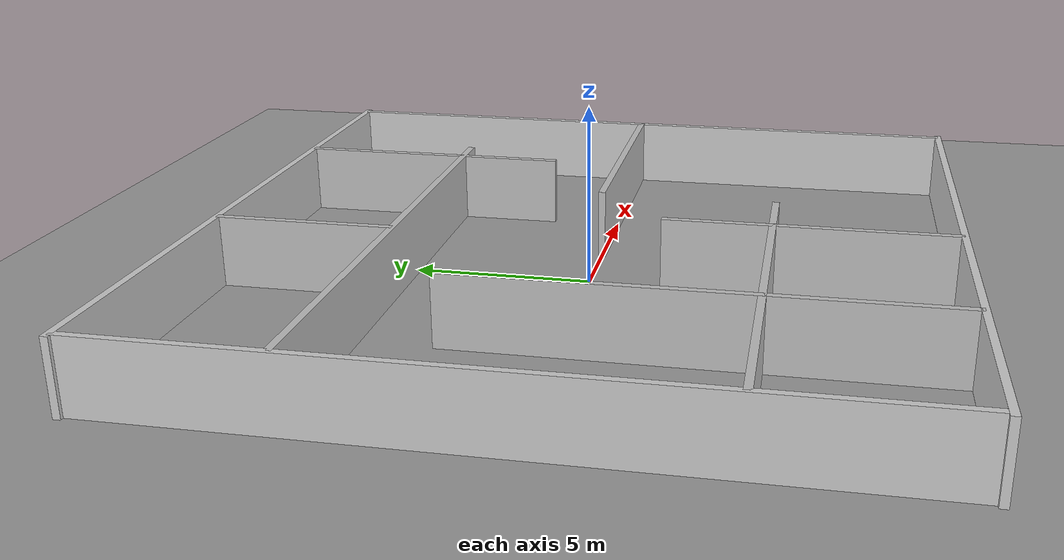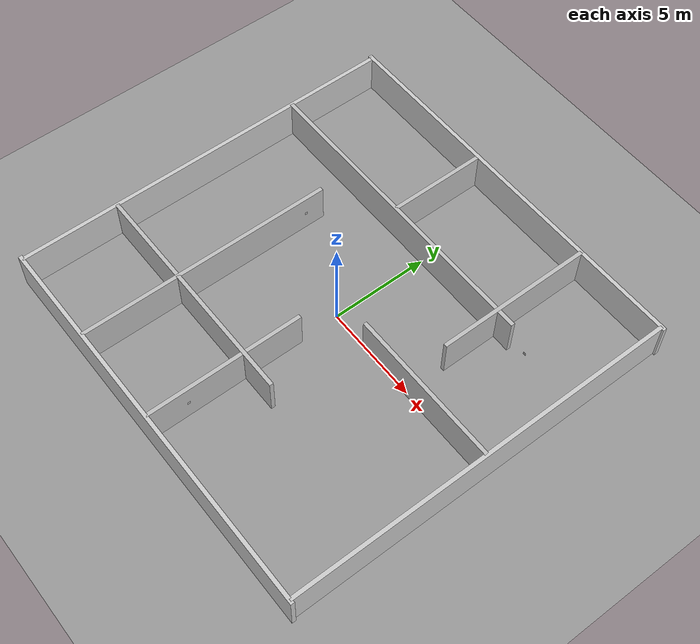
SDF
<?xml version="1.0" ?>
<sdf version="1.9">
  <world name="maze">

    <!-- ── Physics ────────────────────────────────────────────────────────── -->
    <physics name="1ms" type="ignored">
      <max_step_size>0.001</max_step_size>
      <real_time_factor>1.0</real_time_factor>
    </physics>

    <!-- ── Plugins ───────────────────────────────────────────────────────── -->
    <plugin filename="gz-sim-physics-system"
            name="gz::sim::systems::Physics"/>
    <plugin filename="gz-sim-user-commands-system"
            name="gz::sim::systems::UserCommands"/>
    <plugin filename="gz-sim-scene-broadcaster-system"
            name="gz::sim::systems::SceneBroadcaster"/>
    <plugin filename="gz-sim-sensors-system"
            name="gz::sim::systems::Sensors">
      <render_engine>ogre2</render_engine>
    </plugin>
    <plugin filename="gz-sim-imu-system"
            name="gz::sim::systems::Imu"/>
    <plugin filename="gz-sim-air-pressure-system"
            name="gz::sim::systems::AirPressure"/>
    <plugin filename="gz-sim-magnetometer-system"
            name="gz::sim::systems::Magnetometer"/>

    <!-- ── Lighting ──────────────────────────────────────────────────────── -->
    <light type="directional" name="sun">
      <cast_shadows>true</cast_shadows>
      <pose>0 0 100 0 0 0</pose>
      <diffuse>0.9 0.9 0.9 1</diffuse>
      <specular>0.1 0.1 0.1 1</specular>
      <direction>-0.5 0.1 -0.9</direction>
    </light>

    <!-- ── Ground plane ──────────────────────────────────────────────────── -->
    <model name="ground_plane">
      <static>true</static>
      <link name="link">
        <collision name="collision">
          <geometry><plane><normal>0 0 1</normal><size>100 100</size></plane></geometry>
        </collision>
        <visual name="visual">
          <geometry><plane><normal>0 0 1</normal><size>100 100</size></plane></geometry>
          <material>
            <ambient>0.6 0.6 0.6 1</ambient>
            <diffuse>0.6 0.6 0.6 1</diffuse>
          </material>
        </visual>
      </link>
    </model>

    <!--  MAZE WALLS                                                        -->
    <!--  Origin at world center. Wall thickness 0.2m, height 2.0m.        -->
    <!--  Corridor width ~2.0m.                                             -->

    <!-- Outer perimeter: 20m × 20m box, walls along edges -->

    <!-- North wall -->
    <model name="wall_N">
      <static>true</static>
      <pose>0 10 1 0 0 0</pose>
      <link name="link">
        <collision name="c"><geometry><box><size>20.4 0.2 2.0</size></box></geometry></collision>
        <visual name="v">
          <geometry><box><size>20.4 0.2 2.0</size></box></geometry>
          <material><ambient>0.8 0.8 0.8 1</ambient></material>
        </visual>
      </link>
    </model>

    <!-- South wall -->
    <model name="wall_S">
      <static>true</static>
      <pose>0 -10 1 0 0 0</pose>
      <link name="link">
        <collision name="c"><geometry><box><size>20.4 0.2 2.0</size></box></geometry></collision>
        <visual name="v">
          <geometry><box><size>20.4 0.2 2.0</size></box></geometry>
          <material><ambient>0.8 0.8 0.8 1</ambient></material>
        </visual>
      </link>
    </model>

    <!-- East wall -->
    <model name="wall_E">
      <static>true</static>
      <pose>10 0 1 0 0 0</pose>
      <link name="link">
        <collision name="c"><geometry><box><size>0.2 20.0 2.0</size></box></geometry></collision>
        <visual name="v">
          <geometry><box><size>0.2 20.0 2.0</size></box></geometry>
          <material><ambient>0.8 0.8 0.8 1</ambient></material>
        </visual>
      </link>
    </model>

    <!-- West wall -->
    <model name="wall_W">
      <static>true</static>
      <pose>-10 0 1 0 0 0</pose>
      <link name="link">
        <collision name="c"><geometry><box><size>0.2 20.0 2.0</size></box></geometry></collision>
        <visual name="v">
          <geometry><box><size>0.2 20.0 2.0</size></box></geometry>
          <material><ambient>0.8 0.8 0.8 1</ambient></material>
        </visual>
      </link>
    </model>

    <!-- ── Interior dividers (creating maze corridors) ───────────────────── -->

    <!-- Horizontal divider at y=5 from x=-10 to x=6 (gap 6..10) -->
    <model name="wall_h1">
      <static>true</static>
      <pose>-2 5 1 0 0 0</pose>
      <link name="link">
        <collision name="c"><geometry><box><size>16.0 0.2 2.0</size></box></geometry></collision>
        <visual name="v">
          <geometry><box><size>16.0 0.2 2.0</size></box></geometry>
          <material><ambient>0.75 0.75 0.75 1</ambient></material>
        </visual>
      </link>
    </model>

    <!-- Horizontal divider at y=0 from x=2 to x=10 -->
    <model name="wall_h2">
      <static>true</static>
      <pose>6 0 1 0 0 0</pose>
      <link name="link">
        <collision name="c"><geometry><box><size>8.0 0.2 2.0</size></box></geometry></collision>
        <visual name="v">
          <geometry><box><size>8.0 0.2 2.0</size></box></geometry>
          <material><ambient>0.75 0.75 0.75 1</ambient></material>
        </visual>
      </link>
    </model>

    <!-- Horizontal divider at y=-5 from x=-10 to x=2 -->
    <model name="wall_h3">
      <static>true</static>
      <pose>-4 -5 1 0 0 0</pose>
      <link name="link">
        <collision name="c"><geometry><box><size>12.0 0.2 2.0</size></box></geometry></collision>
        <visual name="v">
          <geometry><box><size>12.0 0.2 2.0</size></box></geometry>
          <material><ambient>0.75 0.75 0.75 1</ambient></material>
        </visual>
      </link>
    </model>

    <!-- Vertical divider at x=-5 from y=-10 to y=3 -->
    <model name="wall_v1">
      <static>true</static>
      <pose>-5 -3.5 1 0 0 0</pose>
      <link name="link">
        <collision name="c"><geometry><box><size>0.2 13.0 2.0</size></box></geometry></collision>
        <visual name="v">
          <geometry><box><size>0.2 13.0 2.0</size></box></geometry>
          <material><ambient>0.75 0.75 0.75 1</ambient></material>
        </visual>
      </link>
    </model>

    <!-- Vertical divider at x=0 from y=-10 to y=-2 -->
    <model name="wall_v2">
      <static>true</static>
      <pose>0 -6 1 0 0 0</pose>
      <link name="link">
        <collision name="c"><geometry><box><size>0.2 8.0 2.0</size></box></geometry></collision>
        <visual name="v">
          <geometry><box><size>0.2 8.0 2.0</size></box></geometry>
          <material><ambient>0.75 0.75 0.75 1</ambient></material>
        </visual>
      </link>
    </model>

    <!-- Vertical divider at x=5 from y=2 to y=10 -->
    <model name="wall_v3">
      <static>true</static>
      <pose>5 6 1 0 0 0</pose>
      <link name="link">
        <collision name="c"><geometry><box><size>0.2 8.0 2.0</size></box></geometry></collision>
        <visual name="v">
          <geometry><box><size>0.2 8.0 2.0</size></box></geometry>
          <material><ambient>0.75 0.75 0.75 1</ambient></material>
        </visual>
      </link>
    </model>

    <!-- Vertical divider at x=-2 from y=5 to y=10 -->
    <model name="wall_v4">
      <static>true</static>
      <pose>-2 7.5 1 0 0 0</pose>
      <link name="link">
        <collision name="c"><geometry><box><size>0.2 5.0 2.0</size></box></geometry></collision>
        <visual name="v">
          <geometry><box><size>0.2 5.0 2.0</size></box></geometry>
          <material><ambient>0.75 0.75 0.75 1</ambient></material>
        </visual>
      </link>
    </model>

    <!--  ARUCO MARKERS (mounted on walls at ~1.0m height, facing corridor) -->
    <!--  Dictionary: DICT_4X4_50                                           -->
    <!--  Size: 0.15m × 0.15m                                               -->

    <!-- Tag ID 0 — NW corridor, on wall_v1 facing East -->
    <model name="aruco_tag_0">
      <static>true</static>
      <pose>-4.9 2 1.0 0 0 0</pose>
      <link name="link">
        <visual name="v">
          <geometry><box><size>0.001 0.15 0.15</size></box></geometry>
          <material>
            <script>
              <uri>model://aruco_marker/materials/scripts</uri>
              <uri>model://aruco_marker/materials/textures</uri>
              <name>ArUcoMarker/Marker0</name>
            </script>
          </material>
        </visual>
      </link>
    </model>

    <!-- Tag ID 1 — NE corridor, on wall_h1 facing South -->
    <model name="aruco_tag_1">
      <static>true</static>
      <pose>7 4.9 1.0 0 0 1.5708</pose>
      <link name="link">
        <visual name="v">
          <geometry><box><size>0.001 0.15 0.15</size></box></geometry>
          <material>
            <script>
              <uri>model://aruco_marker/materials/scripts</uri>
              <uri>model://aruco_marker/materials/textures</uri>
              <name>ArUcoMarker/Marker1</name>
            </script>
          </material>
        </visual>
      </link>
    </model>

    <!-- Tag ID 2 — center area, on wall_h2 facing South -->
    <model name="aruco_tag_2">
      <static>true</static>
      <pose>3 0.1 1.0 0 0 0</pose>
      <link name="link">
        <visual name="v">
          <geometry><box><size>0.001 0.15 0.15</size></box></geometry>
          <material>
            <script>
              <uri>model://aruco_marker/materials/scripts</uri>
              <uri>model://aruco_marker/materials/textures</uri>
              <name>ArUcoMarker/Marker2</name>
            </script>
          </material>
        </visual>
      </link>
    </model>

    <!-- Tag ID 3 — SE corridor, on wall_v2 facing West -->
    <model name="aruco_tag_3">
      <static>true</static>
      <pose>0.1 -8 1.0 0 0 0</pose>
      <link name="link">
        <visual name="v">
          <geometry><box><size>0.001 0.15 0.15</size></box></geometry>
          <material>
            <script>
              <uri>model://aruco_marker/materials/scripts</uri>
              <uri>model://aruco_marker/materials/textures</uri>
              <name>ArUcoMarker/Marker3</name>
            </script>
          </material>
        </visual>
      </link>
    </model>

    <!-- Tag ID 4 — SW corridor, on wall_h3 facing North -->
    <model name="aruco_tag_4">
      <static>true</static>
      <pose>-7 -4.9 1.0 0 0 1.5708</pose>
      <link name="link">
        <visual name="v">
          <geometry><box><size>0.001 0.15 0.15</size></box></geometry>
          <material>
            <script>
              <uri>model://aruco_marker/materials/scripts</uri>
              <uri>model://aruco_marker/materials/textures</uri>
              <name>ArUcoMarker/Marker4</name>
            </script>
          </material>
        </visual>
      </link>
    </model>

    <!--  DRONE SPAWNS (handled by PX4 SITL via launch_px4_sitl.sh)        -->
    <!--  Listed here as reference only — PX4 SITL manages its own model.  -->
    <!--  Drone 1: (0, 0, 0.3)  → ENU: x=0, y=0                           -->
    <!--  Drone 2: (2, 0, 0.3)  → ENU: x=2, y=0                           -->

    <!--  TURTLEBOT 4 SPAWN                                                 -->
    <!--  Spawned via turtlebot4_simulator or gz service at (1, 1, 0)       -->

  </world>
</sdf>
